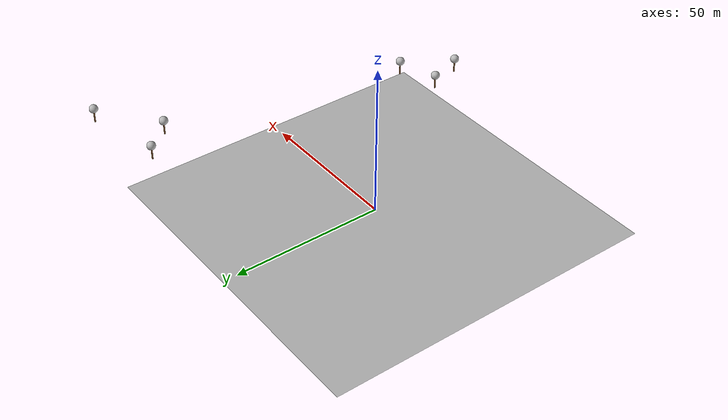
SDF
<sdf version="1.7">
 <world name="default">
  <model name="ground_plane">
   <static>1</static>
   <link name="link">
    <collision name="collision">
     <geometry><plane><normal>0 0 1</normal><size>250 250</size></plane></geometry>
     <surface><friction><ode><mu>1</mu><mu2>1</mu2></ode></friction></surface>
    </collision>
    <visual name="grass">
     <cast_shadows>0</cast_shadows>
     <geometry><mesh><uri>model://SARcgrass/grass_plane.dae</uri><scale>1 1 1</scale></mesh></geometry>
    </visual>
   </link>
  </model>
  <model name="MRS_tree_simples_fire0">
   <pose>63.4926 -64.8615 0 0 -0 0</pose>
   <frame name="MRS_tree_simples_fire::__model__" attached_to="MRS_tree_simples_fire::link">
    <pose relative_to="__model__">-18.6619 -4.46441 0 0 -0 0</pose>
   </frame>
   <static>1</static>
   <link name="MRS_tree_simples_fire::link">
    <pose relative_to="MRS_tree_simples_fire::__model__">0 0 0.1 0 -0 0</pose>
    <inertial>
     <mass>666</mass>
     <inertia>
      <ixx>0.0861167</ixx>
      <ixy>0</ixy>
      <ixz>0</ixz>
      <iyy>0.0861167</iyy>
      <iyz>0</iyz>
      <izz>0.0861167</izz>
     </inertia>
    </inertial>
    <collision name="collision_trunk">
     <pose>0 0 2 0 -0 0</pose>
     <geometry><cylinder><radius>0.25</radius><length>4</length></cylinder></geometry>
     <surface>
      <contact>
       <poissons_ratio>0.347</poissons_ratio>
       <elastic_modulus>8.8e+09</elastic_modulus>
       <ode><kp>100000</kp><kd>100</kd><max_vel>100</max_vel><min_depth>0.001</min_depth></ode>
      </contact>
      <friction>
       <torsional>
        <coefficient>1</coefficient>
        <use_patch_radius>0</use_patch_radius>
        <surface_radius>0.01</surface_radius>
       </torsional>
      </friction>
     </surface>
    </collision>
    <collision name="collision_treetop">
     <pose>0 0 5.2 0 -0 0</pose>
     <geometry><sphere><radius>1.5</radius></sphere></geometry>
     <surface>
      <contact>
       <poissons_ratio>0.347</poissons_ratio>
       <elastic_modulus>8.8e+09</elastic_modulus>
       <ode><kp>100000</kp><kd>100</kd><max_vel>100</max_vel><min_depth>0.001</min_depth></ode>
      </contact>
      <friction>
       <torsional>
        <coefficient>1</coefficient>
        <use_patch_radius>0</use_patch_radius>
        <surface_radius>0.01</surface_radius>
       </torsional>
      </friction>
     </surface>
    </collision>
    <visual name="trunk">
     <pose>0 0 2 0 -0 0</pose>
     <geometry><cylinder><radius>0.25</radius><length>4</length></cylinder></geometry>
     <material>
      <script>
       <uri>model://MRS_tree_simples_fire/scripts</uri>
       <uri>model://MRS_tree_simples_fire/materials/textures</uri>
       <name>MRS_tree_simples_fire/Trunk</name>
      </script>
     </material>
    </visual>
    <visual name="treetop">
     <pose>0 0 5.2 0 -0 0</pose>
     <geometry><sphere><radius>1.5</radius></sphere></geometry>
     <material>
      <script>
       <uri>model://MRS_tree_simples_fire/scripts</uri>
       <uri>model://MRS_tree_simples_fire/materials/textures</uri>
       <name>MRS_tree_simples_fire/Treetop</name>
      </script>
     </material>
    </visual>
   </link>
  </model>
  <model name="MRS_tree_simples_fire3">
   <pose>90 30 0 0 -0 0</pose>
   <frame name="MRS_tree_simples_fire::__model__" attached_to="MRS_tree_simples_fire::link">
    <pose relative_to="__model__">-17.2204 1.19244 0 0 -0 0</pose>
   </frame>
   <static>1</static>
   <link name="MRS_tree_simples_fire::link">
    <pose relative_to="MRS_tree_simples_fire::__model__">0 0 0.1 0 -0 0</pose>
    <inertial>
     <mass>666</mass>
     <inertia>
      <ixx>0.0861167</ixx>
      <ixy>0</ixy>
      <ixz>0</ixz>
      <iyy>0.0861167</iyy>
      <iyz>0</iyz>
      <izz>0.0861167</izz>
     </inertia>
    </inertial>
    <collision name="collision_trunk">
     <pose>0 0 2 0 -0 0</pose>
     <geometry><cylinder><radius>0.25</radius><length>4</length></cylinder></geometry>
     <surface>
      <contact>
       <poissons_ratio>0.347</poissons_ratio>
       <elastic_modulus>8.8e+09</elastic_modulus>
       <ode><kp>100000</kp><kd>100</kd><max_vel>100</max_vel><min_depth>0.001</min_depth></ode>
      </contact>
      <friction>
       <torsional>
        <coefficient>1</coefficient>
        <use_patch_radius>0</use_patch_radius>
        <surface_radius>0.01</surface_radius>
       </torsional>
      </friction>
     </surface>
    </collision>
    <collision name="collision_treetop">
     <pose>0 0 5.2 0 -0 0</pose>
     <geometry><sphere><radius>1.5</radius></sphere></geometry>
     <surface>
      <contact>
       <poissons_ratio>0.347</poissons_ratio>
       <elastic_modulus>8.8e+09</elastic_modulus>
       <ode><kp>100000</kp><kd>100</kd><max_vel>100</max_vel><min_depth>0.001</min_depth></ode>
      </contact>
      <friction>
       <torsional>
        <coefficient>1</coefficient>
        <use_patch_radius>0</use_patch_radius>
        <surface_radius>0.01</surface_radius>
       </torsional>
      </friction>
     </surface>
    </collision>
    <visual name="trunk">
     <pose>0 0 2 0 -0 0</pose>
     <geometry><cylinder><radius>0.25</radius><length>4</length></cylinder></geometry>
     <material>
      <script>
       <uri>model://MRS_tree_simples_fire/scripts</uri>
       <uri>model://MRS_tree_simples_fire/materials/textures</uri>
       <name>MRS_tree_simples_fire/Trunk</name>
      </script>
     </material>
    </visual>
    <visual name="treetop">
     <pose>0 0 5.2 0 -0 0</pose>
     <geometry><sphere><radius>1.5</radius></sphere></geometry>
     <material>
      <script>
       <uri>model://MRS_tree_simples_fire/scripts</uri>
       <uri>model://MRS_tree_simples_fire/materials/textures</uri>
       <name>MRS_tree_simples_fire/Treetop</name>
      </script>
     </material>
    </visual>
   </link>
  </model>
  <model name="MRS_tree_simples_close0">
   <pose>64.9517 -48.5813 0 0 -0 0</pose>
   <frame name="MRS_tree_simples_close::__model__" attached_to="MRS_tree_simples_close::link">
    <pose relative_to="__model__">-10.0259 -4.58237 0 0 -0 0</pose>
   </frame>
   <static>1</static>
   <link name="MRS_tree_simples_close::link">
    <pose relative_to="MRS_tree_simples_close::__model__">0 0 0.1 0 -0 0</pose>
    <inertial>
     <mass>666</mass>
     <inertia>
      <ixx>0.0861167</ixx>
      <ixy>0</ixy>
      <ixz>0</ixz>
      <iyy>0.0861167</iyy>
      <iyz>0</iyz>
      <izz>0.0861167</izz>
     </inertia>
    </inertial>
    <collision name="collision_trunk">
     <pose>0 0 2 0 -0 0</pose>
     <geometry><cylinder><radius>0.25</radius><length>4</length></cylinder></geometry>
     <surface>
      <contact>
       <poissons_ratio>0.347</poissons_ratio>
       <elastic_modulus>8.8e+09</elastic_modulus>
       <ode><kp>100000</kp><kd>100</kd><max_vel>100</max_vel><min_depth>0.001</min_depth></ode>
      </contact>
      <friction>
       <torsional>
        <coefficient>1</coefficient>
        <use_patch_radius>0</use_patch_radius>
        <surface_radius>0.01</surface_radius>
       </torsional>
      </friction>
     </surface>
    </collision>
    <collision name="collision_treetop">
     <pose>0 0 5.2 0 -0 0</pose>
     <geometry><sphere><radius>1.5</radius></sphere></geometry>
     <surface>
      <contact>
       <poissons_ratio>0.347</poissons_ratio>
       <elastic_modulus>8.8e+09</elastic_modulus>
       <ode><kp>100000</kp><kd>100</kd><max_vel>100</max_vel><min_depth>0.001</min_depth></ode>
      </contact>
      <friction>
       <torsional>
        <coefficient>1</coefficient>
        <use_patch_radius>0</use_patch_radius>
        <surface_radius>0.01</surface_radius>
       </torsional>
      </friction>
     </surface>
    </collision>
    <visual name="trunk">
     <pose>0 0 2 0 -0 0</pose>
     <geometry><cylinder><radius>0.25</radius><length>4</length></cylinder></geometry>
     <material>
      <script>
       <uri>model://MRS_tree_simples_close/scripts</uri>
       <uri>model://MRS_tree_simples_close/materials/textures</uri>
       <name>MRS_tree_simples_close/Trunk</name>
      </script>
     </material>
    </visual>
    <visual name="treetop">
     <pose>0 0 5.2 0 -0 0</pose>
     <geometry><sphere><radius>1.5</radius></sphere></geometry>
     <material>
      <script>
       <uri>model://MRS_tree_simples_close/scripts</uri>
       <uri>model://MRS_tree_simples_close/materials/textures</uri>
       <name>MRS_tree_simples_close/Treetop</name>
      </script>
     </material>
    </visual>
   </link>
  </model>
  <model name="MRS_tree_simples_close3">
   <pose>120 50 0 0 -0 0</pose>
   <frame name="MRS_tree_simples_close::__model__" attached_to="MRS_tree_simples_close::link">
    <pose relative_to="__model__">-27.4814 -3.74202 0 0 -0 0</pose>
   </frame>
   <static>1</static>
   <link name="MRS_tree_simples_close::link">
    <pose relative_to="MRS_tree_simples_close::__model__">0 0 0.1 0 -0 0</pose>
    <inertial>
     <mass>666</mass>
     <inertia>
      <ixx>0.0861167</ixx>
      <ixy>0</ixy>
      <ixz>0</ixz>
      <iyy>0.0861167</iyy>
      <iyz>0</iyz>
      <izz>0.0861167</izz>
     </inertia>
    </inertial>
    <collision name="collision_trunk">
     <pose>0 0 2 0 -0 0</pose>
     <geometry><cylinder><radius>0.25</radius><length>4</length></cylinder></geometry>
     <surface>
      <contact>
       <poissons_ratio>0.347</poissons_ratio>
       <elastic_modulus>8.8e+09</elastic_modulus>
       <ode><kp>100000</kp><kd>100</kd><max_vel>100</max_vel><min_depth>0.001</min_depth></ode>
      </contact>
      <friction>
       <torsional>
        <coefficient>1</coefficient>
        <use_patch_radius>0</use_patch_radius>
        <surface_radius>0.01</surface_radius>
       </torsional>
      </friction>
     </surface>
    </collision>
    <collision name="collision_treetop">
     <pose>0 0 5.2 0 -0 0</pose>
     <geometry><sphere><radius>1.5</radius></sphere></geometry>
     <surface>
      <contact>
       <poissons_ratio>0.347</poissons_ratio>
       <elastic_modulus>8.8e+09</elastic_modulus>
       <ode><kp>100000</kp><kd>100</kd><max_vel>100</max_vel><min_depth>0.001</min_depth></ode>
      </contact>
      <friction>
       <torsional>
        <coefficient>1</coefficient>
        <use_patch_radius>0</use_patch_radius>
        <surface_radius>0.01</surface_radius>
       </torsional>
      </friction>
     </surface>
    </collision>
    <visual name="trunk">
     <pose>0 0 2 0 -0 0</pose>
     <geometry><cylinder><radius>0.25</radius><length>4</length></cylinder></geometry>
     <material>
      <script>
       <uri>model://MRS_tree_simples_close/scripts</uri>
       <uri>model://MRS_tree_simples_close/materials/textures</uri>
       <name>MRS_tree_simples_close/Trunk</name>
      </script>
     </material>
    </visual>
    <visual name="treetop">
     <pose>0 0 5.2 0 -0 0</pose>
     <geometry><sphere><radius>1.5</radius></sphere></geometry>
     <material>
      <script>
       <uri>model://MRS_tree_simples_close/scripts</uri>
       <uri>model://MRS_tree_simples_close/materials/textures</uri>
       <name>MRS_tree_simples_close/Treetop</name>
      </script>
     </material>
    </visual>
   </link>
  </model>
  <model name="MRS_tree_simple0">
   <pose>48.2546 -60.0509 0 0 -0 0</pose>
   <frame name="MRS_tree_simple::__model__" attached_to="MRS_tree_simple::link">
    <pose relative_to="__model__">-7.50262 2.85821 0 0 -0 0</pose>
   </frame>
   <static>1</static>
   <link name="MRS_tree_simple::link">
    <pose relative_to="MRS_tree_simple::__model__">0 0 0.1 0 -0 0</pose>
    <inertial>
     <mass>666</mass>
     <inertia>
      <ixx>0.0861167</ixx>
      <ixy>0</ixy>
      <ixz>0</ixz>
      <iyy>0.0861167</iyy>
      <iyz>0</iyz>
      <izz>0.0861167</izz>
     </inertia>
    </inertial>
    <collision name="collision_trunk">
     <pose>0 0 2 0 -0 0</pose>
     <geometry><cylinder><radius>0.25</radius><length>4</length></cylinder></geometry>
     <surface>
      <contact>
       <poissons_ratio>0.347</poissons_ratio>
       <elastic_modulus>8.8e+09</elastic_modulus>
       <ode><kp>100000</kp><kd>100</kd><max_vel>100</max_vel><min_depth>0.001</min_depth></ode>
      </contact>
      <friction>
       <torsional>
        <coefficient>1</coefficient>
        <use_patch_radius>0</use_patch_radius>
        <surface_radius>0.01</surface_radius>
       </torsional>
      </friction>
     </surface>
    </collision>
    <collision name="collision_treetop">
     <pose>0 0 5.2 0 -0 0</pose>
     <geometry><sphere><radius>1.5</radius></sphere></geometry>
     <surface>
      <contact>
       <poissons_ratio>0.347</poissons_ratio>
       <elastic_modulus>8.8e+09</elastic_modulus>
       <ode><kp>100000</kp><kd>100</kd><max_vel>100</max_vel><min_depth>0.001</min_depth></ode>
      </contact>
      <friction>
       <torsional>
        <coefficient>1</coefficient>
        <use_patch_radius>0</use_patch_radius>
        <surface_radius>0.01</surface_radius>
       </torsional>
      </friction>
     </surface>
    </collision>
    <visual name="trunk">
     <pose>0 0 2 0 -0 0</pose>
     <geometry><cylinder><radius>0.25</radius><length>4</length></cylinder></geometry>
     <material>
      <script>
       <uri>model://MRS_tree_simple/scripts</uri>
       <uri>model://MRS_tree_simple/materials/textures</uri>
       <name>MRS_tree_simple/Trunk</name>
      </script>
     </material>
    </visual>
    <visual name="treetop">
     <pose>0 0 5.2 0 -0 0</pose>
     <geometry><sphere><radius>1.5</radius></sphere></geometry>
     <material>
      <script>
       <uri>model://MRS_tree_simple/scripts</uri>
       <uri>model://MRS_tree_simple/materials/textures</uri>
       <name>MRS_tree_simple/Treetop</name>
      </script>
     </material>
    </visual>
   </link>
  </model>
  <model name="MRS_tree_simple3">
   <pose>90.1142 50.382 0 0 -0 0</pose>
   <frame name="MRS_tree_simple::__model__" attached_to="MRS_tree_simple::link">
    <pose relative_to="__model__">-27.0097 -9.03572 0 0 -0 0</pose>
   </frame>
   <static>1</static>
   <link name="MRS_tree_simple::link">
    <pose relative_to="MRS_tree_simple::__model__">0 0 0.1 0 -0 0</pose>
    <inertial>
     <mass>666</mass>
     <inertia>
      <ixx>0.0861167</ixx>
      <ixy>0</ixy>
      <ixz>0</ixz>
      <iyy>0.0861167</iyy>
      <iyz>0</iyz>
      <izz>0.0861167</izz>
     </inertia>
    </inertial>
    <collision name="collision_trunk">
     <pose>0 0 2 0 -0 0</pose>
     <geometry><cylinder><radius>0.25</radius><length>4</length></cylinder></geometry>
     <surface>
      <contact>
       <poissons_ratio>0.347</poissons_ratio>
       <elastic_modulus>8.8e+09</elastic_modulus>
       <ode><kp>100000</kp><kd>100</kd><max_vel>100</max_vel><min_depth>0.001</min_depth></ode>
      </contact>
      <friction>
       <torsional>
        <coefficient>1</coefficient>
        <use_patch_radius>0</use_patch_radius>
        <surface_radius>0.01</surface_radius>
       </torsional>
      </friction>
     </surface>
    </collision>
    <collision name="collision_treetop">
     <pose>0 0 5.2 0 -0 0</pose>
     <geometry><sphere><radius>1.5</radius></sphere></geometry>
     <surface>
      <contact>
       <poissons_ratio>0.347</poissons_ratio>
       <elastic_modulus>8.8e+09</elastic_modulus>
       <ode><kp>100000</kp><kd>100</kd><max_vel>100</max_vel><min_depth>0.001</min_depth></ode>
      </contact>
      <friction>
       <torsional>
        <coefficient>1</coefficient>
        <use_patch_radius>0</use_patch_radius>
        <surface_radius>0.01</surface_radius>
       </torsional>
      </friction>
     </surface>
    </collision>
    <visual name="trunk">
     <pose>0 0 2 0 -0 0</pose>
     <geometry><cylinder><radius>0.25</radius><length>4</length></cylinder></geometry>
     <material>
      <script>
       <uri>model://MRS_tree_simple/scripts</uri>
       <uri>model://MRS_tree_simple/materials/textures</uri>
       <name>MRS_tree_simple/Trunk</name>
      </script>
     </material>
    </visual>
    <visual name="treetop">
     <pose>0 0 5.2 0 -0 0</pose>
     <geometry><sphere><radius>1.5</radius></sphere></geometry>
     <material>
      <script>
       <uri>model://MRS_tree_simple/scripts</uri>
       <uri>model://MRS_tree_simple/materials/textures</uri>
       <name>MRS_tree_simple/Treetop</name>
      </script>
     </material>
    </visual>
   </link>
  </model>
  <model name="SARckc_floor">
   <frame name="SARckc_floor::__model__" attached_to="SARckc_floor::link_1">
    <pose relative_to="__model__">0 0 100 0 0 -2.35619</pose>
   </frame>
   <link name="SARckc_floor::link_1">
    <inertial>
     <mass>10</mass>
     <inertia><ixx>1</ixx><ixy>1</ixy><ixz>1</ixz><iyy>1</iyy><iyz>1</iyz><izz>1</izz></inertia>
    </inertial>
    <pose relative_to="SARckc_floor::__model__">0 0 0 0 -0 0</pose>
    <collision name="collision_uav">
     <pose>0 -1.34855 -1.71555 -0.063826 0 0</pose>
     <geometry><box><size>5.6 11 0.5</size></box></geometry>
    </collision>
   </link>
   <static>1</static>
  </model>
 </world>
</sdf>
